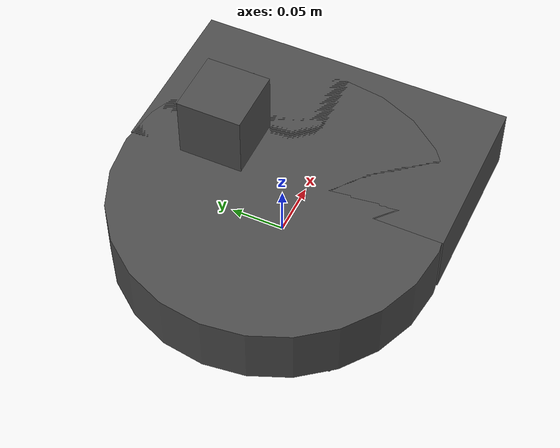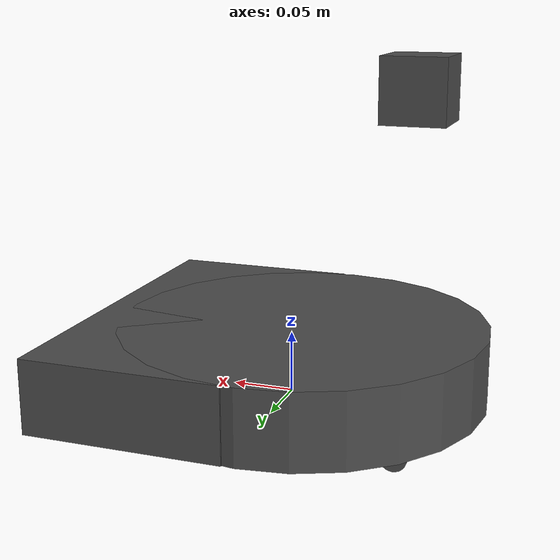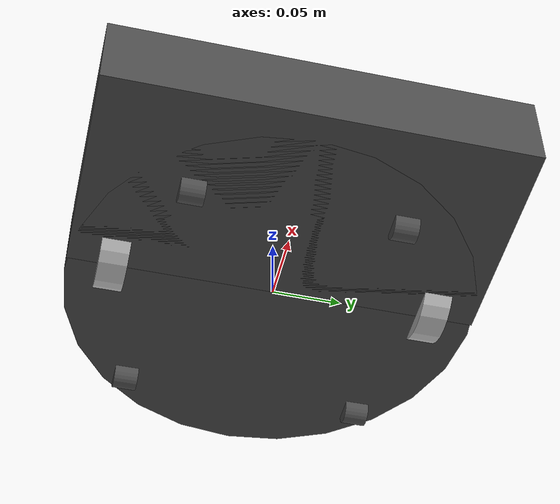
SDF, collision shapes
<sdf version='1.5'>
  <model name='neato_standalone'>
    <link name='base_footprint'>
      <pose frame=''>0 0 0 0 -0 0</pose>
      <inertial>
        <pose frame=''>0.00959 -0 8e-06 0 -0 0</pose>
        <mass>2.44131</mass>
        <inertia>
          <ixx>0.0246781</ixx>
          <ixy>-1.03977e-21</ixy>
          <ixz>1.82757e-06</ixz>
          <iyy>0.0246891</iyy>
          <iyz>-8.48244e-25</iyz>
          <izz>0.0418184</izz>
        </inertia>
      </inertial>
      <collision name='base_footprint_fixed_joint_lump__base_link_collision'>
        <pose frame=''>-0.01 0 0.03 0 -0 0</pose>
        <geometry>
          <cylinder>
            <length>0.06</length>
            <radius>0.15</radius>
          </cylinder>
        </geometry>
        <surface>
          <contact>
            <ode/>
          </contact>
          <friction>
            <ode>
              <mu>0.3</mu>
              <mu2>0.3</mu2>
            </ode>
          </friction>
        </surface>
      </collision>
      <collision name='base_footprint_fixed_joint_lump__base_link_collision_1'>
        <pose frame=''>0.08 0 0.03 0 -0 0</pose>
        <geometry>
          <box>
            <size>0.16 0.3 0.06</size>
          </box>
        </geometry>
        <surface>
          <contact>
            <ode/>
          </contact>
          <friction>
            <ode>
              <mu>0.3</mu>
              <mu2>0.3</mu2>
            </ode>
          </friction>
        </surface>
      </collision>
      <collision name='base_footprint_fixed_joint_lump__camera_link_collision_2'>
        <pose frame=''>-0.1 0 0.25 0 -0 0</pose>
        <geometry>
          <box>
            <size>0.05 0.05 0.05</size>
          </box>
        </geometry>
        <surface>
          <contact>
            <ode/>
          </contact>
          <friction>
            <ode/>
          </friction>
        </surface>
      </collision>
      <collision name='base_footprint_fixed_joint_lump__caster_back_left_link_collision_3'>
        <pose frame=''>-0.11 0.09 0 1.5708 -0 0</pose>
        <geometry>
          <cylinder>
            <length>0.0176</length>
            <radius>0.01</radius>
          </cylinder>
        </geometry>
        <surface>
          <contact>
            <ode>
              <kp>1e+06</kp>
              <kd>100</kd>
              <max_vel>1</max_vel>
              <min_depth>0.001</min_depth>
            </ode>
          </contact>
          <friction>
            <ode>
              <mu>0</mu>
              <mu2>0</mu2>
            </ode>
          </friction>
        </surface>
      </collision>
      <collision name='base_footprint_fixed_joint_lump__caster_back_right_link_collision_4'>
        <pose frame=''>-0.11 -0.09 0 1.5708 -0 0</pose>
        <geometry>
          <cylinder>
            <length>0.0176</length>
            <radius>0.01</radius>
          </cylinder>
        </geometry>
        <surface>
          <contact>
            <ode>
              <kp>1e+06</kp>
              <kd>100</kd>
              <max_vel>1</max_vel>
              <min_depth>0.001</min_depth>
            </ode>
          </contact>
          <friction>
            <ode>
              <mu>0</mu>
              <mu2>0</mu2>
            </ode>
          </friction>
        </surface>
      </collision>
      <collision name='base_footprint_fixed_joint_lump__caster_front_left_link_collision_5'>
        <pose frame=''>0.08 0.075 0 1.5708 -0 0</pose>
        <geometry>
          <cylinder>
            <length>0.0176</length>
            <radius>0.01</radius>
          </cylinder>
        </geometry>
        <surface>
          <contact>
            <ode>
              <kp>1e+06</kp>
              <kd>100</kd>
              <max_vel>1</max_vel>
              <min_depth>0.001</min_depth>
            </ode>
          </contact>
          <friction>
            <ode>
              <mu>0</mu>
              <mu2>0</mu2>
            </ode>
          </friction>
        </surface>
      </collision>
      <collision name='base_footprint_fixed_joint_lump__caster_front_right_link_collision_6'>
        <pose frame=''>0.08 -0.075 0 1.5708 -0 0</pose>
        <geometry>
          <cylinder>
            <length>0.0176</length>
            <radius>0.01</radius>
          </cylinder>
        </geometry>
        <surface>
          <contact>
            <ode>
              <kp>1e+06</kp>
              <kd>100</kd>
              <max_vel>1</max_vel>
              <min_depth>0.001</min_depth>
            </ode>
          </contact>
          <friction>
            <ode>
              <mu>0</mu>
              <mu2>0</mu2>
            </ode>
          </friction>
        </surface>
      </collision>
      <visual name='base_footprint_fixed_joint_lump__base_link_visual'>
        <pose frame=''>0 0 0 0 -0 0</pose>
        <geometry>
          <mesh>
            <scale>0.001 0.001 0.001</scale>
            <uri>model://mobile_base/meshes/main_body.stl</uri>
          </mesh>
        </geometry>
        <material>
          <script>
            <name>Gazebo/DarkGrey</name>
            <uri>file://media/materials/scripts/gazebo.material</uri>
          </script>
        </material>
      </visual>
      <visual name='base_footprint_fixed_joint_lump__camera_link_visual_1'>
        <pose frame=''>-0.1 0 0.25 0 -0 0</pose>
        <geometry>
          <box>
            <size>0.05 0.05 0.05</size>
          </box>
        </geometry>
        <material>
          <script>
            <uri>__default__</uri>
            <name>__default__</name>
          </script>
        </material>
      </visual>
      <velocity_decay/>
      <velocity_decay/>
      <sensor name='bumpers' type='contact'>
        <always_on>1</always_on>
        <update_rate>10</update_rate>
        <visualize>1</visualize>
        <contact>
          <collision>base_footprint_fixed_joint_lump__base_link_collision_1</collision>
          <topic>__default_topic__</topic>
        </contact>
        <plugin name='gazebo_ros_bumper_controller' filename='libgazebo_ros_bumper.so'>
          <bumperTopicName>bumper</bumperTopicName>
          <frameName>world</frameName>
	  <robotNamespace>/</robotNamespace>
        </plugin>
        <pose frame=''>0 0 0 0 -0 0</pose>
      </sensor>
      <velocity_decay/>
      <sensor name='camera' type='camera'>
        <update_rate>10</update_rate>
        <camera name='camera'>
          <horizontal_fov>1.39626</horizontal_fov>
          <image>
            <width>600</width>
            <height>600</height>
            <format>R8G8B8</format>
          </image>
          <clip>
            <near>0.02</near>
            <far>300</far>
          </clip>
          <noise>
            <type>gaussian</type>
            <mean>0</mean>
            <stddev>0.007</stddev>
          </noise>
        </camera>
        <plugin name='camera_controller' filename='libgazebo_ros_camera.so'>
          <alwaysOn>1</alwaysOn>
          <updateRate>0.0</updateRate>
          <cameraName>camera</cameraName>
          <imageTopicName>image_raw</imageTopicName>
          <cameraInfoTopicName>camera_info</cameraInfoTopicName>
          <frameName>camera_link</frameName>
          <hackBaseline>0.07</hackBaseline>
          <distortionK1>0.0</distortionK1>
          <distortionK2>0.0</distortionK2>
          <distortionK3>0.0</distortionK3>
          <distortionT1>0.0</distortionT1>
          <distortionT2>0.0</distortionT2>
        </plugin>
        <pose frame=''>-0.1 0 0.25 0 -0 0</pose>
      </sensor>
      <velocity_decay/>
      <velocity_decay/>
      <velocity_decay/>
      <velocity_decay/>
      <velocity_decay/>
      <gravity>1</gravity>
      <sensor name='imu_sensor' type='imu'>
        <always_on>1</always_on>
        <update_rate>100</update_rate>
        <visualize>0</visualize>
        <topic>__default_topic__</topic>
        <plugin name='imu_plugin' filename='libgazebo_ros_imu_sensor.so'>
          <robotNamespace>/</robotNamespace>
          <topicName>imu</topicName>
          <bodyName>imu_link</bodyName>
          <updateRateHZ>10.0</updateRateHZ>
          <gaussianNoise>0.0</gaussianNoise>
          <xyzOffset>0 0 0</xyzOffset>
          <rpyOffset>0 0 0</rpyOffset>
          <frameName>imu_link</frameName>
        </plugin>
        <pose frame=''>0 0 0 0 -0 0</pose>
      </sensor>
      <gravity>1</gravity>
      <velocity_decay/>
      <sensor name='laser' type='ray'>
        <always_on>1</always_on>
        <update_rate>5</update_rate>
        <ray>
          <scan>
            <horizontal>
              <samples>361</samples>
              <resolution>1</resolution>
              <min_angle>-3.14159</min_angle>
              <max_angle>3.14159</max_angle>
            </horizontal>
          </scan>
          <range>
            <min>0.1</min>
            <max>5</max>
            <resolution>1</resolution>
          </range>
        </ray>
        <plugin name='gazebo_ros_laser_controller' filename='libgazebo_ros_laser.so'>
          <topicName>scan</topicName>
          <frameName>laser_link</frameName>
        </plugin>
        <pose frame=''>-0.084 0 0.166 0 -0 -3.14159</pose>
      </sensor>
    </link>
    <link name='wheel_left_link'>
      <pose frame=''>0 0.1175 0.025 0 -0 0</pose>
      <inertial>
        <pose frame=''>0 0 0 0 -0 0</pose>
        <mass>0.01</mass>
        <inertia>
          <ixx>0.001</ixx>
          <ixy>0</ixy>
          <ixz>0</ixz>
          <iyy>0.001</iyy>
          <iyz>0</iyz>
          <izz>0.001</izz>
        </inertia>
      </inertial>
      <collision name='wheel_left_link_collision'>
        <pose frame=''>0 0 0 1.5708 -0 0</pose>
        <geometry>
          <cylinder>
            <length>0.0206</length>
            <radius>0.035</radius>
          </cylinder>
        </geometry>
        <surface>
          <contact>
            <ode>
              <kp>1e+06</kp>
              <kd>100</kd>
              <max_vel>1</max_vel>
              <min_depth>0.001</min_depth>
            </ode>
          </contact>
          <friction>
            <ode>
              <mu>1</mu>
              <mu2>1</mu2>
            </ode>
          </friction>
        </surface>
      </collision>
      <visual name='wheel_left_link_visual'>
        <pose frame=''>0 0 0 1.5708 -0 0</pose>
        <geometry>
          <mesh>
            <scale>1 1 1</scale>
            <uri>model://mobile_base/meshes/wheel.dae</uri>
          </mesh>
        </geometry>
        <material>
          <script>
            <uri>__default__</uri>
            <name>__default__</name>
          </script>
        </material>
      </visual>
      <gravity>1</gravity>
      <velocity_decay/>
    </link>
    <joint name='wheel_left_joint' type='revolute'>
      <child>wheel_left_link</child>
      <parent>base_footprint</parent>
      <axis>
        <xyz>0 1 0</xyz>
        <limit>
          <lower>-1e+16</lower>
          <upper>1e+16</upper>
        </limit>
        <dynamics>
          <spring_reference>0</spring_reference>
          <spring_stiffness>0</spring_stiffness>
        </dynamics>
        <use_parent_model_frame>1</use_parent_model_frame>
      </axis>
    </joint>
    <link name='wheel_right_link'>
      <pose frame=''>0 -0.1175 0.025 0 -0 0</pose>
      <inertial>
        <pose frame=''>0 0 0 0 -0 0</pose>
        <mass>0.01</mass>
        <inertia>
          <ixx>0.001</ixx>
          <ixy>0</ixy>
          <ixz>0</ixz>
          <iyy>0.001</iyy>
          <iyz>0</iyz>
          <izz>0.001</izz>
        </inertia>
      </inertial>
      <collision name='wheel_right_link_collision'>
        <pose frame=''>0 0 0 1.5708 -0 0</pose>
        <geometry>
          <cylinder>
            <length>0.0206</length>
            <radius>0.035</radius>
          </cylinder>
        </geometry>
        <surface>
          <contact>
            <ode>
              <kp>1e+06</kp>
              <kd>100</kd>
              <max_vel>1</max_vel>
              <min_depth>0.001</min_depth>
            </ode>
          </contact>
          <friction>
            <ode>
              <mu>1</mu>
              <mu2>1</mu2>
            </ode>
          </friction>
        </surface>
      </collision>
      <visual name='wheel_right_link_visual'>
        <pose frame=''>0 0 0 1.5708 -0 0</pose>
        <geometry>
          <mesh>
            <scale>1 1 1</scale>
            <uri>model://mobile_base/meshes/wheel.dae</uri>
          </mesh>
        </geometry>
        <material>
          <script>
            <uri>__default__</uri>
            <name>__default__</name>
          </script>
        </material>
      </visual>
      <gravity>1</gravity>
      <velocity_decay/>
    </link>
    <joint name='wheel_right_joint' type='revolute'>
      <child>wheel_right_link</child>
      <parent>base_footprint</parent>
      <axis>
        <xyz>0 1 0</xyz>
        <limit>
          <lower>-1e+16</lower>
          <upper>1e+16</upper>
        </limit>
        <dynamics>
          <spring_reference>0</spring_reference>
          <spring_stiffness>0</spring_stiffness>
        </dynamics>
        <use_parent_model_frame>1</use_parent_model_frame>
      </axis>
    </joint>
    <plugin name='differential_drive_controller' filename='libgazebo_ros_diff_drive.so'>
      <alwaysOn>1</alwaysOn>
      <updateRate>10</updateRate>
      <leftJoint>wheel_left_joint</leftJoint>
      <rightJoint>wheel_right_joint</rightJoint>
      <wheelSeparation>0.235</wheelSeparation>
      <wheelDiameter>0.070</wheelDiameter>
      <torque>1.0</torque>
      <commandTopic>cmd_vel</commandTopic>
      <odometryTopic>odom</odometryTopic>
      <odometryFrame>odom</odometryFrame>
      <robotBaseFrame>base_footprint</robotBaseFrame>
      <odometrySource>encoder</odometrySource>
      <robotNamespace>/</robotNamespace>
    </plugin>
    <static>0</static>
    <plugin name='joint_state_publisher' filename='libgazebo_ros_joint_state_publisher.so'>
      <jointName>wheel_left_joint, wheel_right_joint</jointName>
      <updateRate>10.0</updateRate>
      <alwaysOn>1</alwaysOn>
    </plugin>
  </model>
</sdf>
